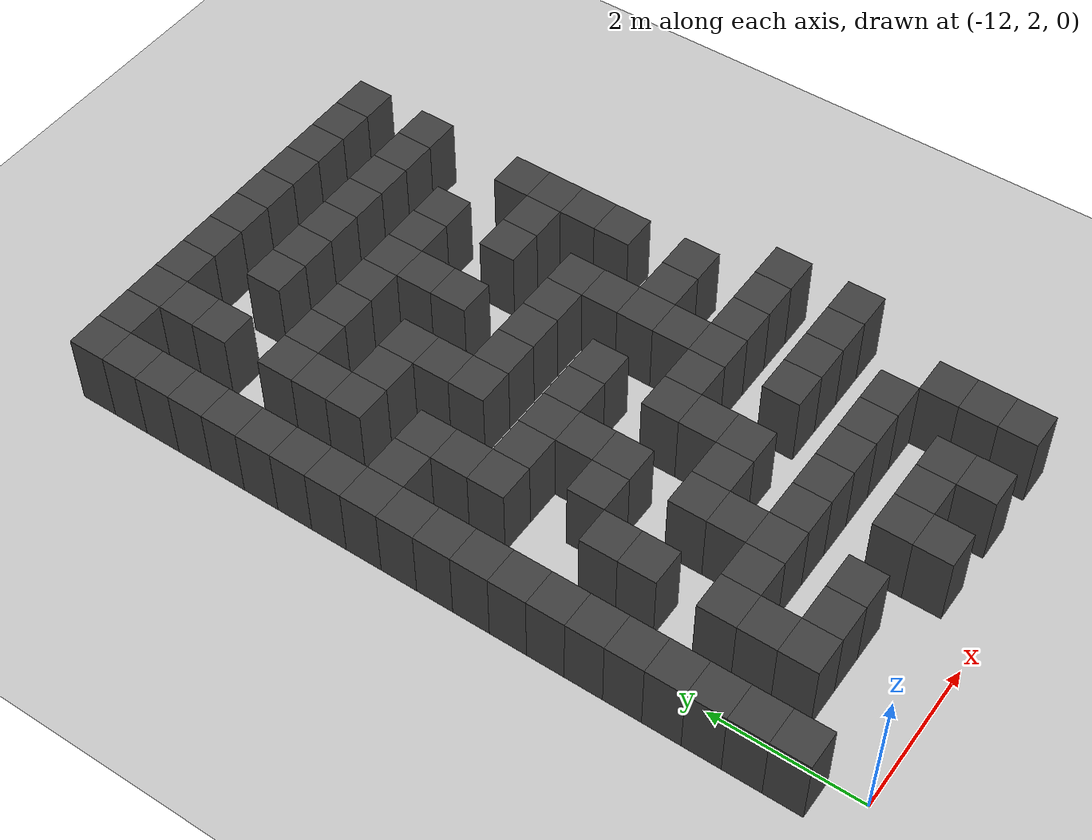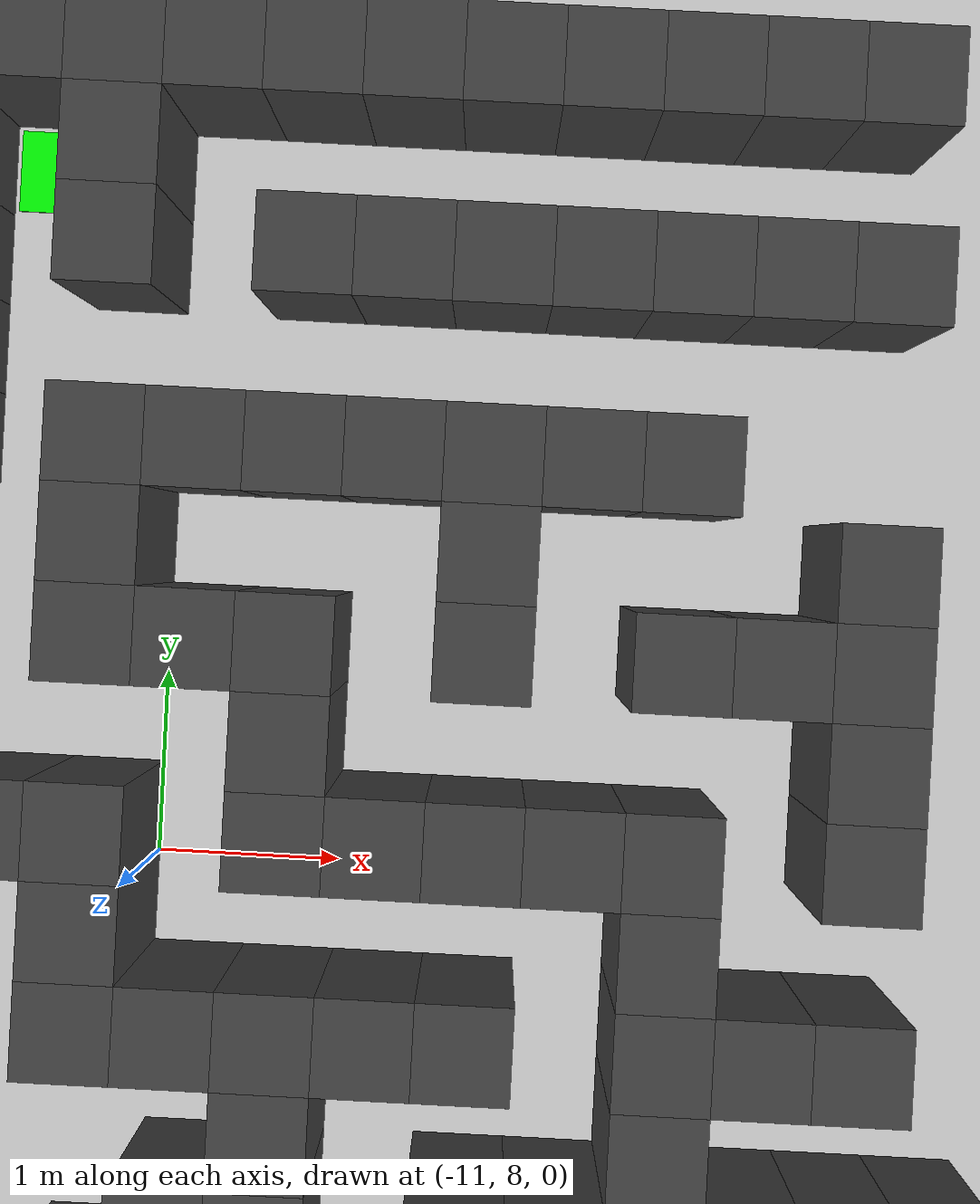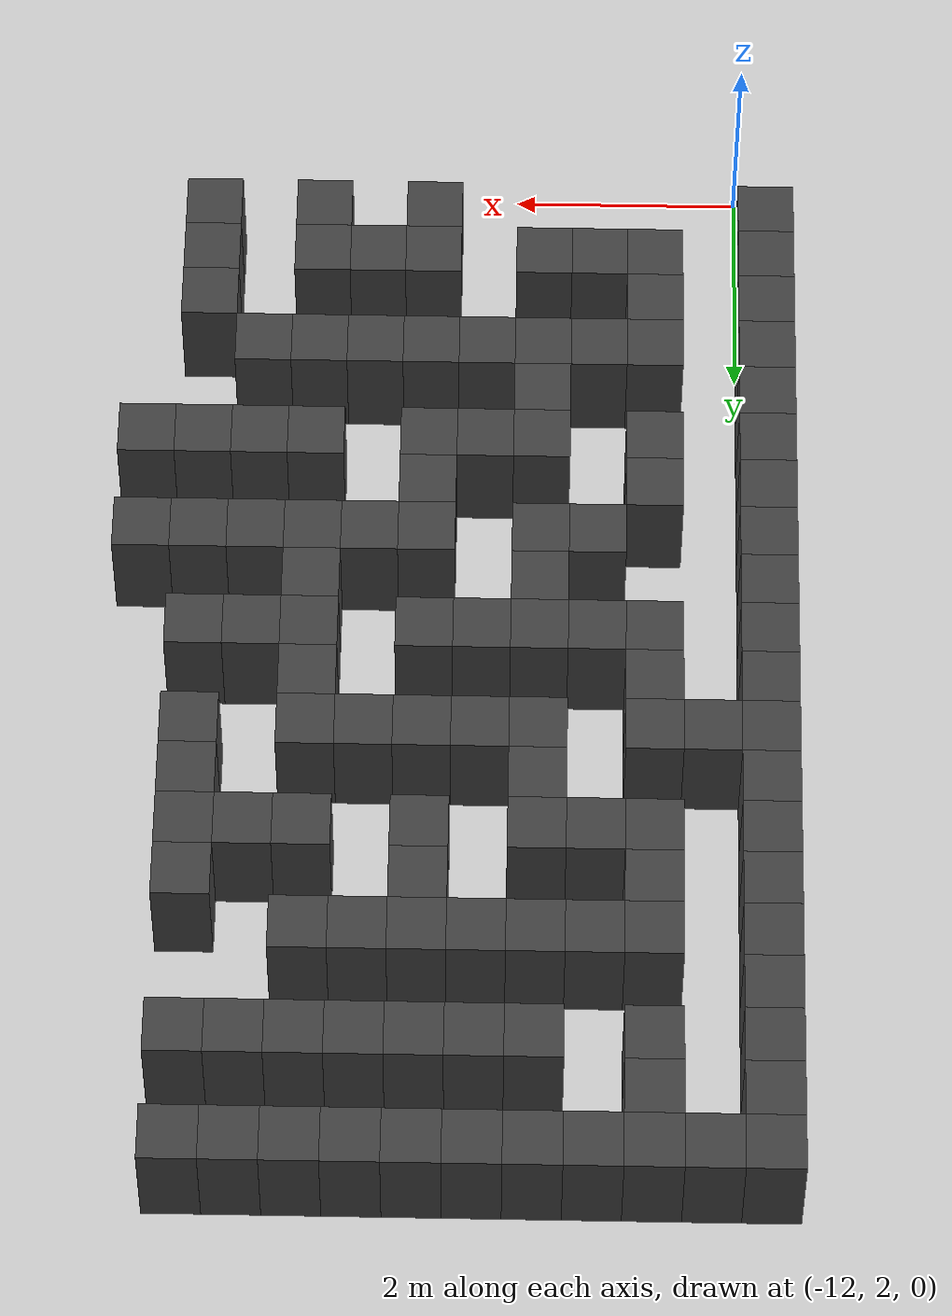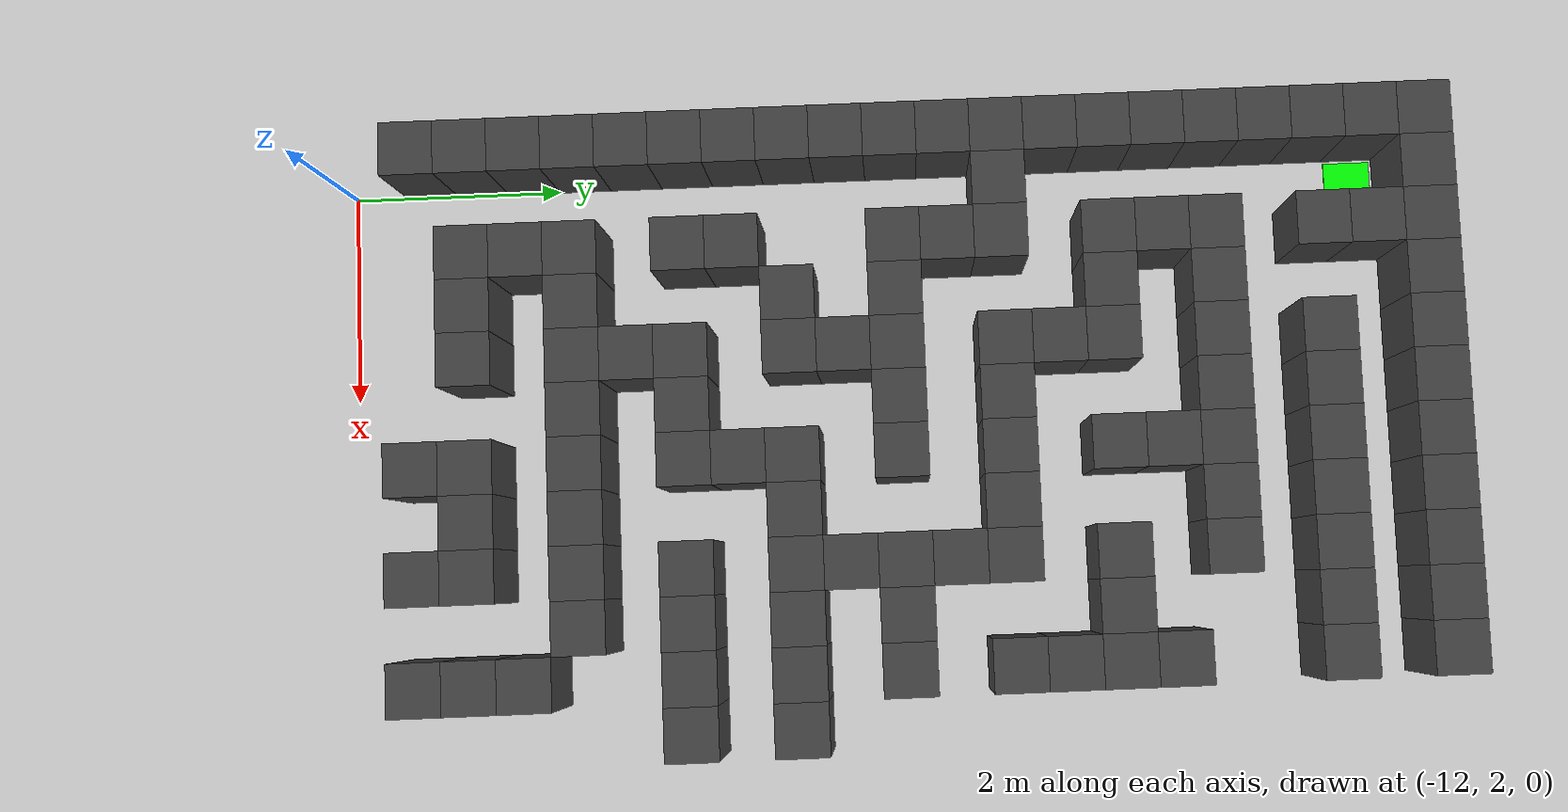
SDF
<sdf version="1.7">
 <world name="map_18228">
  <model name="ground_plane">
   <static>true</static>
   <link name="link">
    <collision name="collision">
     <geometry><plane><normal>0 0 1</normal><size>200 200</size></plane></geometry>
    </collision>
    <visual name="visual">
     <geometry><plane><normal>0 0 1</normal><size>200 200</size></plane></geometry>
     <material><ambient>0.8 0.8 0.8 1</ambient><diffuse>0.8 0.8 0.8 1</diffuse></material>
    </visual>
   </link>
  </model>
  <model name="maze_environment">
   <static>true</static>
   <link name="wall_0">
    <pose>-12.250 12.250 0.500 0 0 0</pose>
    <collision name="col"><geometry><box><size>0.5 0.5 1.0</size></box></geometry></collision>
    <visual name="vis">
     <geometry><box><size>0.5 0.5 1.0</size></box></geometry>
     <material><ambient>0.15 0.15 0.15 1</ambient><diffuse>0.25 0.25 0.25 1</diffuse></material>
    </visual>
   </link>
   <link name="wall_1">
    <pose>-11.750 12.250 0.500 0 0 0</pose>
    <collision name="col"><geometry><box><size>0.5 0.5 1.0</size></box></geometry></collision>
    <visual name="vis">
     <geometry><box><size>0.5 0.5 1.0</size></box></geometry>
     <material><ambient>0.15 0.15 0.15 1</ambient><diffuse>0.25 0.25 0.25 1</diffuse></material>
    </visual>
   </link>
   <link name="wall_2">
    <pose>-11.250 12.250 0.500 0 0 0</pose>
    <collision name="col"><geometry><box><size>0.5 0.5 1.0</size></box></geometry></collision>
    <visual name="vis">
     <geometry><box><size>0.5 0.5 1.0</size></box></geometry>
     <material><ambient>0.15 0.15 0.15 1</ambient><diffuse>0.25 0.25 0.25 1</diffuse></material>
    </visual>
   </link>
   <link name="wall_3">
    <pose>-10.750 12.250 0.500 0 0 0</pose>
    <collision name="col"><geometry><box><size>0.5 0.5 1.0</size></box></geometry></collision>
    <visual name="vis">
     <geometry><box><size>0.5 0.5 1.0</size></box></geometry>
     <material><ambient>0.15 0.15 0.15 1</ambient><diffuse>0.25 0.25 0.25 1</diffuse></material>
    </visual>
   </link>
   <link name="wall_4">
    <pose>-10.250 12.250 0.500 0 0 0</pose>
    <collision name="col"><geometry><box><size>0.5 0.5 1.0</size></box></geometry></collision>
    <visual name="vis">
     <geometry><box><size>0.5 0.5 1.0</size></box></geometry>
     <material><ambient>0.15 0.15 0.15 1</ambient><diffuse>0.25 0.25 0.25 1</diffuse></material>
    </visual>
   </link>
   <link name="wall_5">
    <pose>-9.750 12.250 0.500 0 0 0</pose>
    <collision name="col"><geometry><box><size>0.5 0.5 1.0</size></box></geometry></collision>
    <visual name="vis">
     <geometry><box><size>0.5 0.5 1.0</size></box></geometry>
     <material><ambient>0.15 0.15 0.15 1</ambient><diffuse>0.25 0.25 0.25 1</diffuse></material>
    </visual>
   </link>
   <link name="wall_6">
    <pose>-9.250 12.250 0.500 0 0 0</pose>
    <collision name="col"><geometry><box><size>0.5 0.5 1.0</size></box></geometry></collision>
    <visual name="vis">
     <geometry><box><size>0.5 0.5 1.0</size></box></geometry>
     <material><ambient>0.15 0.15 0.15 1</ambient><diffuse>0.25 0.25 0.25 1</diffuse></material>
    </visual>
   </link>
   <link name="wall_7">
    <pose>-8.750 12.250 0.500 0 0 0</pose>
    <collision name="col"><geometry><box><size>0.5 0.5 1.0</size></box></geometry></collision>
    <visual name="vis">
     <geometry><box><size>0.5 0.5 1.0</size></box></geometry>
     <material><ambient>0.15 0.15 0.15 1</ambient><diffuse>0.25 0.25 0.25 1</diffuse></material>
    </visual>
   </link>
   <link name="wall_8">
    <pose>-8.250 12.250 0.500 0 0 0</pose>
    <collision name="col"><geometry><box><size>0.5 0.5 1.0</size></box></geometry></collision>
    <visual name="vis">
     <geometry><box><size>0.5 0.5 1.0</size></box></geometry>
     <material><ambient>0.15 0.15 0.15 1</ambient><diffuse>0.25 0.25 0.25 1</diffuse></material>
    </visual>
   </link>
   <link name="wall_9">
    <pose>-7.750 12.250 0.500 0 0 0</pose>
    <collision name="col"><geometry><box><size>0.5 0.5 1.0</size></box></geometry></collision>
    <visual name="vis">
     <geometry><box><size>0.5 0.5 1.0</size></box></geometry>
     <material><ambient>0.15 0.15 0.15 1</ambient><diffuse>0.25 0.25 0.25 1</diffuse></material>
    </visual>
   </link>
   <link name="wall_10">
    <pose>-7.250 12.250 0.500 0 0 0</pose>
    <collision name="col"><geometry><box><size>0.5 0.5 1.0</size></box></geometry></collision>
    <visual name="vis">
     <geometry><box><size>0.5 0.5 1.0</size></box></geometry>
     <material><ambient>0.15 0.15 0.15 1</ambient><diffuse>0.25 0.25 0.25 1</diffuse></material>
    </visual>
   </link>
   <link name="wall_50">
    <pose>-12.250 11.750 0.500 0 0 0</pose>
    <collision name="col"><geometry><box><size>0.5 0.5 1.0</size></box></geometry></collision>
    <visual name="vis">
     <geometry><box><size>0.5 0.5 1.0</size></box></geometry>
     <material><ambient>0.15 0.15 0.15 1</ambient><diffuse>0.25 0.25 0.25 1</diffuse></material>
    </visual>
   </link>
   <link name="wall_51">
    <pose>-11.250 11.750 0.500 0 0 0</pose>
    <collision name="col"><geometry><box><size>0.5 0.5 1.0</size></box></geometry></collision>
    <visual name="vis">
     <geometry><box><size>0.5 0.5 1.0</size></box></geometry>
     <material><ambient>0.15 0.15 0.15 1</ambient><diffuse>0.25 0.25 0.25 1</diffuse></material>
    </visual>
   </link>
   <link name="wall_57">
    <pose>-12.250 11.250 0.500 0 0 0</pose>
    <collision name="col"><geometry><box><size>0.5 0.5 1.0</size></box></geometry></collision>
    <visual name="vis">
     <geometry><box><size>0.5 0.5 1.0</size></box></geometry>
     <material><ambient>0.15 0.15 0.15 1</ambient><diffuse>0.25 0.25 0.25 1</diffuse></material>
    </visual>
   </link>
   <link name="wall_58">
    <pose>-11.250 11.250 0.500 0 0 0</pose>
    <collision name="col"><geometry><box><size>0.5 0.5 1.0</size></box></geometry></collision>
    <visual name="vis">
     <geometry><box><size>0.5 0.5 1.0</size></box></geometry>
     <material><ambient>0.15 0.15 0.15 1</ambient><diffuse>0.25 0.25 0.25 1</diffuse></material>
    </visual>
   </link>
   <link name="wall_59">
    <pose>-10.250 11.250 0.500 0 0 0</pose>
    <collision name="col"><geometry><box><size>0.5 0.5 1.0</size></box></geometry></collision>
    <visual name="vis">
     <geometry><box><size>0.5 0.5 1.0</size></box></geometry>
     <material><ambient>0.15 0.15 0.15 1</ambient><diffuse>0.25 0.25 0.25 1</diffuse></material>
    </visual>
   </link>
   <link name="wall_60">
    <pose>-9.750 11.250 0.500 0 0 0</pose>
    <collision name="col"><geometry><box><size>0.5 0.5 1.0</size></box></geometry></collision>
    <visual name="vis">
     <geometry><box><size>0.5 0.5 1.0</size></box></geometry>
     <material><ambient>0.15 0.15 0.15 1</ambient><diffuse>0.25 0.25 0.25 1</diffuse></material>
    </visual>
   </link>
   <link name="wall_61">
    <pose>-9.250 11.250 0.500 0 0 0</pose>
    <collision name="col"><geometry><box><size>0.5 0.5 1.0</size></box></geometry></collision>
    <visual name="vis">
     <geometry><box><size>0.5 0.5 1.0</size></box></geometry>
     <material><ambient>0.15 0.15 0.15 1</ambient><diffuse>0.25 0.25 0.25 1</diffuse></material>
    </visual>
   </link>
   <link name="wall_62">
    <pose>-8.750 11.250 0.500 0 0 0</pose>
    <collision name="col"><geometry><box><size>0.5 0.5 1.0</size></box></geometry></collision>
    <visual name="vis">
     <geometry><box><size>0.5 0.5 1.0</size></box></geometry>
     <material><ambient>0.15 0.15 0.15 1</ambient><diffuse>0.25 0.25 0.25 1</diffuse></material>
    </visual>
   </link>
   <link name="wall_63">
    <pose>-8.250 11.250 0.500 0 0 0</pose>
    <collision name="col"><geometry><box><size>0.5 0.5 1.0</size></box></geometry></collision>
    <visual name="vis">
     <geometry><box><size>0.5 0.5 1.0</size></box></geometry>
     <material><ambient>0.15 0.15 0.15 1</ambient><diffuse>0.25 0.25 0.25 1</diffuse></material>
    </visual>
   </link>
   <link name="wall_64">
    <pose>-7.750 11.250 0.500 0 0 0</pose>
    <collision name="col"><geometry><box><size>0.5 0.5 1.0</size></box></geometry></collision>
    <visual name="vis">
     <geometry><box><size>0.5 0.5 1.0</size></box></geometry>
     <material><ambient>0.15 0.15 0.15 1</ambient><diffuse>0.25 0.25 0.25 1</diffuse></material>
    </visual>
   </link>
   <link name="wall_65">
    <pose>-7.250 11.250 0.500 0 0 0</pose>
    <collision name="col"><geometry><box><size>0.5 0.5 1.0</size></box></geometry></collision>
    <visual name="vis">
     <geometry><box><size>0.5 0.5 1.0</size></box></geometry>
     <material><ambient>0.15 0.15 0.15 1</ambient><diffuse>0.25 0.25 0.25 1</diffuse></material>
    </visual>
   </link>
   <link name="wall_95">
    <pose>-12.250 10.750 0.500 0 0 0</pose>
    <collision name="col"><geometry><box><size>0.5 0.5 1.0</size></box></geometry></collision>
    <visual name="vis">
     <geometry><box><size>0.5 0.5 1.0</size></box></geometry>
     <material><ambient>0.15 0.15 0.15 1</ambient><diffuse>0.25 0.25 0.25 1</diffuse></material>
    </visual>
   </link>
   <link name="wall_108">
    <pose>-12.250 10.250 0.500 0 0 0</pose>
    <collision name="col"><geometry><box><size>0.5 0.5 1.0</size></box></geometry></collision>
    <visual name="vis">
     <geometry><box><size>0.5 0.5 1.0</size></box></geometry>
     <material><ambient>0.15 0.15 0.15 1</ambient><diffuse>0.25 0.25 0.25 1</diffuse></material>
    </visual>
   </link>
   <link name="wall_109">
    <pose>-11.250 10.250 0.500 0 0 0</pose>
    <collision name="col"><geometry><box><size>0.5 0.5 1.0</size></box></geometry></collision>
    <visual name="vis">
     <geometry><box><size>0.5 0.5 1.0</size></box></geometry>
     <material><ambient>0.15 0.15 0.15 1</ambient><diffuse>0.25 0.25 0.25 1</diffuse></material>
    </visual>
   </link>
   <link name="wall_110">
    <pose>-10.750 10.250 0.500 0 0 0</pose>
    <collision name="col"><geometry><box><size>0.5 0.5 1.0</size></box></geometry></collision>
    <visual name="vis">
     <geometry><box><size>0.5 0.5 1.0</size></box></geometry>
     <material><ambient>0.15 0.15 0.15 1</ambient><diffuse>0.25 0.25 0.25 1</diffuse></material>
    </visual>
   </link>
   <link name="wall_111">
    <pose>-10.250 10.250 0.500 0 0 0</pose>
    <collision name="col"><geometry><box><size>0.5 0.5 1.0</size></box></geometry></collision>
    <visual name="vis">
     <geometry><box><size>0.5 0.5 1.0</size></box></geometry>
     <material><ambient>0.15 0.15 0.15 1</ambient><diffuse>0.25 0.25 0.25 1</diffuse></material>
    </visual>
   </link>
   <link name="wall_112">
    <pose>-9.750 10.250 0.500 0 0 0</pose>
    <collision name="col"><geometry><box><size>0.5 0.5 1.0</size></box></geometry></collision>
    <visual name="vis">
     <geometry><box><size>0.5 0.5 1.0</size></box></geometry>
     <material><ambient>0.15 0.15 0.15 1</ambient><diffuse>0.25 0.25 0.25 1</diffuse></material>
    </visual>
   </link>
   <link name="wall_113">
    <pose>-9.250 10.250 0.500 0 0 0</pose>
    <collision name="col"><geometry><box><size>0.5 0.5 1.0</size></box></geometry></collision>
    <visual name="vis">
     <geometry><box><size>0.5 0.5 1.0</size></box></geometry>
     <material><ambient>0.15 0.15 0.15 1</ambient><diffuse>0.25 0.25 0.25 1</diffuse></material>
    </visual>
   </link>
   <link name="wall_114">
    <pose>-8.750 10.250 0.500 0 0 0</pose>
    <collision name="col"><geometry><box><size>0.5 0.5 1.0</size></box></geometry></collision>
    <visual name="vis">
     <geometry><box><size>0.5 0.5 1.0</size></box></geometry>
     <material><ambient>0.15 0.15 0.15 1</ambient><diffuse>0.25 0.25 0.25 1</diffuse></material>
    </visual>
   </link>
   <link name="wall_115">
    <pose>-8.250 10.250 0.500 0 0 0</pose>
    <collision name="col"><geometry><box><size>0.5 0.5 1.0</size></box></geometry></collision>
    <visual name="vis">
     <geometry><box><size>0.5 0.5 1.0</size></box></geometry>
     <material><ambient>0.15 0.15 0.15 1</ambient><diffuse>0.25 0.25 0.25 1</diffuse></material>
    </visual>
   </link>
   <link name="wall_145">
    <pose>-12.250 9.750 0.500 0 0 0</pose>
    <collision name="col"><geometry><box><size>0.5 0.5 1.0</size></box></geometry></collision>
    <visual name="vis">
     <geometry><box><size>0.5 0.5 1.0</size></box></geometry>
     <material><ambient>0.15 0.15 0.15 1</ambient><diffuse>0.25 0.25 0.25 1</diffuse></material>
    </visual>
   </link>
   <link name="wall_146">
    <pose>-11.250 9.750 0.500 0 0 0</pose>
    <collision name="col"><geometry><box><size>0.5 0.5 1.0</size></box></geometry></collision>
    <visual name="vis">
     <geometry><box><size>0.5 0.5 1.0</size></box></geometry>
     <material><ambient>0.15 0.15 0.15 1</ambient><diffuse>0.25 0.25 0.25 1</diffuse></material>
    </visual>
   </link>
   <link name="wall_147">
    <pose>-9.250 9.750 0.500 0 0 0</pose>
    <collision name="col"><geometry><box><size>0.5 0.5 1.0</size></box></geometry></collision>
    <visual name="vis">
     <geometry><box><size>0.5 0.5 1.0</size></box></geometry>
     <material><ambient>0.15 0.15 0.15 1</ambient><diffuse>0.25 0.25 0.25 1</diffuse></material>
    </visual>
   </link>
   <link name="wall_148">
    <pose>-7.250 9.750 0.500 0 0 0</pose>
    <collision name="col"><geometry><box><size>0.5 0.5 1.0</size></box></geometry></collision>
    <visual name="vis">
     <geometry><box><size>0.5 0.5 1.0</size></box></geometry>
     <material><ambient>0.15 0.15 0.15 1</ambient><diffuse>0.25 0.25 0.25 1</diffuse></material>
    </visual>
   </link>
   <link name="wall_160">
    <pose>-12.250 9.250 0.500 0 0 0</pose>
    <collision name="col"><geometry><box><size>0.5 0.5 1.0</size></box></geometry></collision>
    <visual name="vis">
     <geometry><box><size>0.5 0.5 1.0</size></box></geometry>
     <material><ambient>0.15 0.15 0.15 1</ambient><diffuse>0.25 0.25 0.25 1</diffuse></material>
    </visual>
   </link>
   <link name="wall_161">
    <pose>-11.250 9.250 0.500 0 0 0</pose>
    <collision name="col"><geometry><box><size>0.5 0.5 1.0</size></box></geometry></collision>
    <visual name="vis">
     <geometry><box><size>0.5 0.5 1.0</size></box></geometry>
     <material><ambient>0.15 0.15 0.15 1</ambient><diffuse>0.25 0.25 0.25 1</diffuse></material>
    </visual>
   </link>
   <link name="wall_162">
    <pose>-10.750 9.250 0.500 0 0 0</pose>
    <collision name="col"><geometry><box><size>0.5 0.5 1.0</size></box></geometry></collision>
    <visual name="vis">
     <geometry><box><size>0.5 0.5 1.0</size></box></geometry>
     <material><ambient>0.15 0.15 0.15 1</ambient><diffuse>0.25 0.25 0.25 1</diffuse></material>
    </visual>
   </link>
   <link name="wall_163">
    <pose>-10.250 9.250 0.500 0 0 0</pose>
    <collision name="col"><geometry><box><size>0.5 0.5 1.0</size></box></geometry></collision>
    <visual name="vis">
     <geometry><box><size>0.5 0.5 1.0</size></box></geometry>
     <material><ambient>0.15 0.15 0.15 1</ambient><diffuse>0.25 0.25 0.25 1</diffuse></material>
    </visual>
   </link>
   <link name="wall_164">
    <pose>-9.250 9.250 0.500 0 0 0</pose>
    <collision name="col"><geometry><box><size>0.5 0.5 1.0</size></box></geometry></collision>
    <visual name="vis">
     <geometry><box><size>0.5 0.5 1.0</size></box></geometry>
     <material><ambient>0.15 0.15 0.15 1</ambient><diffuse>0.25 0.25 0.25 1</diffuse></material>
    </visual>
   </link>
   <link name="wall_165">
    <pose>-8.250 9.250 0.500 0 0 0</pose>
    <collision name="col"><geometry><box><size>0.5 0.5 1.0</size></box></geometry></collision>
    <visual name="vis">
     <geometry><box><size>0.5 0.5 1.0</size></box></geometry>
     <material><ambient>0.15 0.15 0.15 1</ambient><diffuse>0.25 0.25 0.25 1</diffuse></material>
    </visual>
   </link>
   <link name="wall_166">
    <pose>-7.750 9.250 0.500 0 0 0</pose>
    <collision name="col"><geometry><box><size>0.5 0.5 1.0</size></box></geometry></collision>
    <visual name="vis">
     <geometry><box><size>0.5 0.5 1.0</size></box></geometry>
     <material><ambient>0.15 0.15 0.15 1</ambient><diffuse>0.25 0.25 0.25 1</diffuse></material>
    </visual>
   </link>
   <link name="wall_167">
    <pose>-7.250 9.250 0.500 0 0 0</pose>
    <collision name="col"><geometry><box><size>0.5 0.5 1.0</size></box></geometry></collision>
    <visual name="vis">
     <geometry><box><size>0.5 0.5 1.0</size></box></geometry>
     <material><ambient>0.15 0.15 0.15 1</ambient><diffuse>0.25 0.25 0.25 1</diffuse></material>
    </visual>
   </link>
   <link name="wall_192">
    <pose>-12.250 8.750 0.500 0 0 0</pose>
    <collision name="col"><geometry><box><size>0.5 0.5 1.0</size></box></geometry></collision>
    <visual name="vis">
     <geometry><box><size>0.5 0.5 1.0</size></box></geometry>
     <material><ambient>0.15 0.15 0.15 1</ambient><diffuse>0.25 0.25 0.25 1</diffuse></material>
    </visual>
   </link>
   <link name="wall_193">
    <pose>-10.250 8.750 0.500 0 0 0</pose>
    <collision name="col"><geometry><box><size>0.5 0.5 1.0</size></box></geometry></collision>
    <visual name="vis">
     <geometry><box><size>0.5 0.5 1.0</size></box></geometry>
     <material><ambient>0.15 0.15 0.15 1</ambient><diffuse>0.25 0.25 0.25 1</diffuse></material>
    </visual>
   </link>
   <link name="wall_194">
    <pose>-7.250 8.750 0.500 0 0 0</pose>
    <collision name="col"><geometry><box><size>0.5 0.5 1.0</size></box></geometry></collision>
    <visual name="vis">
     <geometry><box><size>0.5 0.5 1.0</size></box></geometry>
     <material><ambient>0.15 0.15 0.15 1</ambient><diffuse>0.25 0.25 0.25 1</diffuse></material>
    </visual>
   </link>
   <link name="wall_207">
    <pose>-12.250 8.250 0.500 0 0 0</pose>
    <collision name="col"><geometry><box><size>0.5 0.5 1.0</size></box></geometry></collision>
    <visual name="vis">
     <geometry><box><size>0.5 0.5 1.0</size></box></geometry>
     <material><ambient>0.15 0.15 0.15 1</ambient><diffuse>0.25 0.25 0.25 1</diffuse></material>
    </visual>
   </link>
   <link name="wall_208">
    <pose>-11.750 8.250 0.500 0 0 0</pose>
    <collision name="col"><geometry><box><size>0.5 0.5 1.0</size></box></geometry></collision>
    <visual name="vis">
     <geometry><box><size>0.5 0.5 1.0</size></box></geometry>
     <material><ambient>0.15 0.15 0.15 1</ambient><diffuse>0.25 0.25 0.25 1</diffuse></material>
    </visual>
   </link>
   <link name="wall_209">
    <pose>-11.250 8.250 0.500 0 0 0</pose>
    <collision name="col"><geometry><box><size>0.5 0.5 1.0</size></box></geometry></collision>
    <visual name="vis">
     <geometry><box><size>0.5 0.5 1.0</size></box></geometry>
     <material><ambient>0.15 0.15 0.15 1</ambient><diffuse>0.25 0.25 0.25 1</diffuse></material>
    </visual>
   </link>
   <link name="wall_210">
    <pose>-10.250 8.250 0.500 0 0 0</pose>
    <collision name="col"><geometry><box><size>0.5 0.5 1.0</size></box></geometry></collision>
    <visual name="vis">
     <geometry><box><size>0.5 0.5 1.0</size></box></geometry>
     <material><ambient>0.15 0.15 0.15 1</ambient><diffuse>0.25 0.25 0.25 1</diffuse></material>
    </visual>
   </link>
   <link name="wall_211">
    <pose>-9.750 8.250 0.500 0 0 0</pose>
    <collision name="col"><geometry><box><size>0.5 0.5 1.0</size></box></geometry></collision>
    <visual name="vis">
     <geometry><box><size>0.5 0.5 1.0</size></box></geometry>
     <material><ambient>0.15 0.15 0.15 1</ambient><diffuse>0.25 0.25 0.25 1</diffuse></material>
    </visual>
   </link>
   <link name="wall_212">
    <pose>-9.250 8.250 0.500 0 0 0</pose>
    <collision name="col"><geometry><box><size>0.5 0.5 1.0</size></box></geometry></collision>
    <visual name="vis">
     <geometry><box><size>0.5 0.5 1.0</size></box></geometry>
     <material><ambient>0.15 0.15 0.15 1</ambient><diffuse>0.25 0.25 0.25 1</diffuse></material>
    </visual>
   </link>
   <link name="wall_213">
    <pose>-8.750 8.250 0.500 0 0 0</pose>
    <collision name="col"><geometry><box><size>0.5 0.5 1.0</size></box></geometry></collision>
    <visual name="vis">
     <geometry><box><size>0.5 0.5 1.0</size></box></geometry>
     <material><ambient>0.15 0.15 0.15 1</ambient><diffuse>0.25 0.25 0.25 1</diffuse></material>
    </visual>
   </link>
   <link name="wall_214">
    <pose>-8.250 8.250 0.500 0 0 0</pose>
    <collision name="col"><geometry><box><size>0.5 0.5 1.0</size></box></geometry></collision>
    <visual name="vis">
     <geometry><box><size>0.5 0.5 1.0</size></box></geometry>
     <material><ambient>0.15 0.15 0.15 1</ambient><diffuse>0.25 0.25 0.25 1</diffuse></material>
    </visual>
   </link>
   <link name="wall_215">
    <pose>-7.250 8.250 0.500 0 0 0</pose>
    <collision name="col"><geometry><box><size>0.5 0.5 1.0</size></box></geometry></collision>
    <visual name="vis">
     <geometry><box><size>0.5 0.5 1.0</size></box></geometry>
     <material><ambient>0.15 0.15 0.15 1</ambient><diffuse>0.25 0.25 0.25 1</diffuse></material>
    </visual>
   </link>
   <link name="wall_243">
    <pose>-12.250 7.750 0.500 0 0 0</pose>
    <collision name="col"><geometry><box><size>0.5 0.5 1.0</size></box></geometry></collision>
    <visual name="vis">
     <geometry><box><size>0.5 0.5 1.0</size></box></geometry>
     <material><ambient>0.15 0.15 0.15 1</ambient><diffuse>0.25 0.25 0.25 1</diffuse></material>
    </visual>
   </link>
   <link name="wall_244">
    <pose>-11.250 7.750 0.500 0 0 0</pose>
    <collision name="col"><geometry><box><size>0.5 0.5 1.0</size></box></geometry></collision>
    <visual name="vis">
     <geometry><box><size>0.5 0.5 1.0</size></box></geometry>
     <material><ambient>0.15 0.15 0.15 1</ambient><diffuse>0.25 0.25 0.25 1</diffuse></material>
    </visual>
   </link>
   <link name="wall_245">
    <pose>-8.250 7.750 0.500 0 0 0</pose>
    <collision name="col"><geometry><box><size>0.5 0.5 1.0</size></box></geometry></collision>
    <visual name="vis">
     <geometry><box><size>0.5 0.5 1.0</size></box></geometry>
     <material><ambient>0.15 0.15 0.15 1</ambient><diffuse>0.25 0.25 0.25 1</diffuse></material>
    </visual>
   </link>
   <link name="wall_257">
    <pose>-12.250 7.250 0.500 0 0 0</pose>
    <collision name="col"><geometry><box><size>0.5 0.5 1.0</size></box></geometry></collision>
    <visual name="vis">
     <geometry><box><size>0.5 0.5 1.0</size></box></geometry>
     <material><ambient>0.15 0.15 0.15 1</ambient><diffuse>0.25 0.25 0.25 1</diffuse></material>
    </visual>
   </link>
   <link name="wall_258">
    <pose>-11.250 7.250 0.500 0 0 0</pose>
    <collision name="col"><geometry><box><size>0.5 0.5 1.0</size></box></geometry></collision>
    <visual name="vis">
     <geometry><box><size>0.5 0.5 1.0</size></box></geometry>
     <material><ambient>0.15 0.15 0.15 1</ambient><diffuse>0.25 0.25 0.25 1</diffuse></material>
    </visual>
   </link>
   <link name="wall_259">
    <pose>-10.750 7.250 0.500 0 0 0</pose>
    <collision name="col"><geometry><box><size>0.5 0.5 1.0</size></box></geometry></collision>
    <visual name="vis">
     <geometry><box><size>0.5 0.5 1.0</size></box></geometry>
     <material><ambient>0.15 0.15 0.15 1</ambient><diffuse>0.25 0.25 0.25 1</diffuse></material>
    </visual>
   </link>
   <link name="wall_260">
    <pose>-10.250 7.250 0.500 0 0 0</pose>
    <collision name="col"><geometry><box><size>0.5 0.5 1.0</size></box></geometry></collision>
    <visual name="vis">
     <geometry><box><size>0.5 0.5 1.0</size></box></geometry>
     <material><ambient>0.15 0.15 0.15 1</ambient><diffuse>0.25 0.25 0.25 1</diffuse></material>
    </visual>
   </link>
   <link name="wall_261">
    <pose>-9.750 7.250 0.500 0 0 0</pose>
    <collision name="col"><geometry><box><size>0.5 0.5 1.0</size></box></geometry></collision>
    <visual name="vis">
     <geometry><box><size>0.5 0.5 1.0</size></box></geometry>
     <material><ambient>0.15 0.15 0.15 1</ambient><diffuse>0.25 0.25 0.25 1</diffuse></material>
    </visual>
   </link>
   <link name="wall_262">
    <pose>-9.250 7.250 0.500 0 0 0</pose>
    <collision name="col"><geometry><box><size>0.5 0.5 1.0</size></box></geometry></collision>
    <visual name="vis">
     <geometry><box><size>0.5 0.5 1.0</size></box></geometry>
     <material><ambient>0.15 0.15 0.15 1</ambient><diffuse>0.25 0.25 0.25 1</diffuse></material>
    </visual>
   </link>
   <link name="wall_263">
    <pose>-8.250 7.250 0.500 0 0 0</pose>
    <collision name="col"><geometry><box><size>0.5 0.5 1.0</size></box></geometry></collision>
    <visual name="vis">
     <geometry><box><size>0.5 0.5 1.0</size></box></geometry>
     <material><ambient>0.15 0.15 0.15 1</ambient><diffuse>0.25 0.25 0.25 1</diffuse></material>
    </visual>
   </link>
   <link name="wall_264">
    <pose>-7.750 7.250 0.500 0 0 0</pose>
    <collision name="col"><geometry><box><size>0.5 0.5 1.0</size></box></geometry></collision>
    <visual name="vis">
     <geometry><box><size>0.5 0.5 1.0</size></box></geometry>
     <material><ambient>0.15 0.15 0.15 1</ambient><diffuse>0.25 0.25 0.25 1</diffuse></material>
    </visual>
   </link>
   <link name="wall_265">
    <pose>-7.250 7.250 0.500 0 0 0</pose>
    <collision name="col"><geometry><box><size>0.5 0.5 1.0</size></box></geometry></collision>
    <visual name="vis">
     <geometry><box><size>0.5 0.5 1.0</size></box></geometry>
     <material><ambient>0.15 0.15 0.15 1</ambient><diffuse>0.25 0.25 0.25 1</diffuse></material>
    </visual>
   </link>
   <link name="wall_290">
    <pose>-12.250 6.750 0.500 0 0 0</pose>
    <collision name="col"><geometry><box><size>0.5 0.5 1.0</size></box></geometry></collision>
    <visual name="vis">
     <geometry><box><size>0.5 0.5 1.0</size></box></geometry>
     <material><ambient>0.15 0.15 0.15 1</ambient><diffuse>0.25 0.25 0.25 1</diffuse></material>
    </visual>
   </link>
   <link name="wall_291">
    <pose>-10.250 6.750 0.500 0 0 0</pose>
    <collision name="col"><geometry><box><size>0.5 0.5 1.0</size></box></geometry></collision>
    <visual name="vis">
     <geometry><box><size>0.5 0.5 1.0</size></box></geometry>
     <material><ambient>0.15 0.15 0.15 1</ambient><diffuse>0.25 0.25 0.25 1</diffuse></material>
    </visual>
   </link>
   <link name="wall_292">
    <pose>-8.250 6.750 0.500 0 0 0</pose>
    <collision name="col"><geometry><box><size>0.5 0.5 1.0</size></box></geometry></collision>
    <visual name="vis">
     <geometry><box><size>0.5 0.5 1.0</size></box></geometry>
     <material><ambient>0.15 0.15 0.15 1</ambient><diffuse>0.25 0.25 0.25 1</diffuse></material>
    </visual>
   </link>
   <link name="wall_301">
    <pose>-12.250 6.250 0.500 0 0 0</pose>
    <collision name="col"><geometry><box><size>0.5 0.5 1.0</size></box></geometry></collision>
    <visual name="vis">
     <geometry><box><size>0.5 0.5 1.0</size></box></geometry>
     <material><ambient>0.15 0.15 0.15 1</ambient><diffuse>0.25 0.25 0.25 1</diffuse></material>
    </visual>
   </link>
   <link name="wall_302">
    <pose>-10.750 6.250 0.500 0 0 0</pose>
    <collision name="col"><geometry><box><size>0.5 0.5 1.0</size></box></geometry></collision>
    <visual name="vis">
     <geometry><box><size>0.5 0.5 1.0</size></box></geometry>
     <material><ambient>0.15 0.15 0.15 1</ambient><diffuse>0.25 0.25 0.25 1</diffuse></material>
    </visual>
   </link>
   <link name="wall_303">
    <pose>-10.250 6.250 0.500 0 0 0</pose>
    <collision name="col"><geometry><box><size>0.5 0.5 1.0</size></box></geometry></collision>
    <visual name="vis">
     <geometry><box><size>0.5 0.5 1.0</size></box></geometry>
     <material><ambient>0.15 0.15 0.15 1</ambient><diffuse>0.25 0.25 0.25 1</diffuse></material>
    </visual>
   </link>
   <link name="wall_304">
    <pose>-9.250 6.250 0.500 0 0 0</pose>
    <collision name="col"><geometry><box><size>0.5 0.5 1.0</size></box></geometry></collision>
    <visual name="vis">
     <geometry><box><size>0.5 0.5 1.0</size></box></geometry>
     <material><ambient>0.15 0.15 0.15 1</ambient><diffuse>0.25 0.25 0.25 1</diffuse></material>
    </visual>
   </link>
   <link name="wall_305">
    <pose>-8.750 6.250 0.500 0 0 0</pose>
    <collision name="col"><geometry><box><size>0.5 0.5 1.0</size></box></geometry></collision>
    <visual name="vis">
     <geometry><box><size>0.5 0.5 1.0</size></box></geometry>
     <material><ambient>0.15 0.15 0.15 1</ambient><diffuse>0.25 0.25 0.25 1</diffuse></material>
    </visual>
   </link>
   <link name="wall_306">
    <pose>-8.250 6.250 0.500 0 0 0</pose>
    <collision name="col"><geometry><box><size>0.5 0.5 1.0</size></box></geometry></collision>
    <visual name="vis">
     <geometry><box><size>0.5 0.5 1.0</size></box></geometry>
     <material><ambient>0.15 0.15 0.15 1</ambient><diffuse>0.25 0.25 0.25 1</diffuse></material>
    </visual>
   </link>
   <link name="wall_307">
    <pose>-7.750 6.250 0.500 0 0 0</pose>
    <collision name="col"><geometry><box><size>0.5 0.5 1.0</size></box></geometry></collision>
    <visual name="vis">
     <geometry><box><size>0.5 0.5 1.0</size></box></geometry>
     <material><ambient>0.15 0.15 0.15 1</ambient><diffuse>0.25 0.25 0.25 1</diffuse></material>
    </visual>
   </link>
   <link name="wall_308">
    <pose>-7.250 6.250 0.500 0 0 0</pose>
    <collision name="col"><geometry><box><size>0.5 0.5 1.0</size></box></geometry></collision>
    <visual name="vis">
     <geometry><box><size>0.5 0.5 1.0</size></box></geometry>
     <material><ambient>0.15 0.15 0.15 1</ambient><diffuse>0.25 0.25 0.25 1</diffuse></material>
    </visual>
   </link>
   <link name="wall_309">
    <pose>-6.750 6.250 0.500 0 0 0</pose>
    <collision name="col"><geometry><box><size>0.5 0.5 1.0</size></box></geometry></collision>
    <visual name="vis">
     <geometry><box><size>0.5 0.5 1.0</size></box></geometry>
     <material><ambient>0.15 0.15 0.15 1</ambient><diffuse>0.25 0.25 0.25 1</diffuse></material>
    </visual>
   </link>
   <link name="wall_340">
    <pose>-12.250 5.750 0.500 0 0 0</pose>
    <collision name="col"><geometry><box><size>0.5 0.5 1.0</size></box></geometry></collision>
    <visual name="vis">
     <geometry><box><size>0.5 0.5 1.0</size></box></geometry>
     <material><ambient>0.15 0.15 0.15 1</ambient><diffuse>0.25 0.25 0.25 1</diffuse></material>
    </visual>
   </link>
   <link name="wall_341">
    <pose>-11.250 5.750 0.500 0 0 0</pose>
    <collision name="col"><geometry><box><size>0.5 0.5 1.0</size></box></geometry></collision>
    <visual name="vis">
     <geometry><box><size>0.5 0.5 1.0</size></box></geometry>
     <material><ambient>0.15 0.15 0.15 1</ambient><diffuse>0.25 0.25 0.25 1</diffuse></material>
    </visual>
   </link>
   <link name="wall_342">
    <pose>-9.250 5.750 0.500 0 0 0</pose>
    <collision name="col"><geometry><box><size>0.5 0.5 1.0</size></box></geometry></collision>
    <visual name="vis">
     <geometry><box><size>0.5 0.5 1.0</size></box></geometry>
     <material><ambient>0.15 0.15 0.15 1</ambient><diffuse>0.25 0.25 0.25 1</diffuse></material>
    </visual>
   </link>
   <link name="wall_351">
    <pose>-12.250 5.250 0.500 0 0 0</pose>
    <collision name="col"><geometry><box><size>0.5 0.5 1.0</size></box></geometry></collision>
    <visual name="vis">
     <geometry><box><size>0.5 0.5 1.0</size></box></geometry>
     <material><ambient>0.15 0.15 0.15 1</ambient><diffuse>0.25 0.25 0.25 1</diffuse></material>
    </visual>
   </link>
   <link name="wall_352">
    <pose>-11.250 5.250 0.500 0 0 0</pose>
    <collision name="col"><geometry><box><size>0.5 0.5 1.0</size></box></geometry></collision>
    <visual name="vis">
     <geometry><box><size>0.5 0.5 1.0</size></box></geometry>
     <material><ambient>0.15 0.15 0.15 1</ambient><diffuse>0.25 0.25 0.25 1</diffuse></material>
    </visual>
   </link>
   <link name="wall_353">
    <pose>-10.250 5.250 0.500 0 0 0</pose>
    <collision name="col"><geometry><box><size>0.5 0.5 1.0</size></box></geometry></collision>
    <visual name="vis">
     <geometry><box><size>0.5 0.5 1.0</size></box></geometry>
     <material><ambient>0.15 0.15 0.15 1</ambient><diffuse>0.25 0.25 0.25 1</diffuse></material>
    </visual>
   </link>
   <link name="wall_354">
    <pose>-9.750 5.250 0.500 0 0 0</pose>
    <collision name="col"><geometry><box><size>0.5 0.5 1.0</size></box></geometry></collision>
    <visual name="vis">
     <geometry><box><size>0.5 0.5 1.0</size></box></geometry>
     <material><ambient>0.15 0.15 0.15 1</ambient><diffuse>0.25 0.25 0.25 1</diffuse></material>
    </visual>
   </link>
   <link name="wall_355">
    <pose>-9.250 5.250 0.500 0 0 0</pose>
    <collision name="col"><geometry><box><size>0.5 0.5 1.0</size></box></geometry></collision>
    <visual name="vis">
     <geometry><box><size>0.5 0.5 1.0</size></box></geometry>
     <material><ambient>0.15 0.15 0.15 1</ambient><diffuse>0.25 0.25 0.25 1</diffuse></material>
    </visual>
   </link>
   <link name="wall_356">
    <pose>-8.250 5.250 0.500 0 0 0</pose>
    <collision name="col"><geometry><box><size>0.5 0.5 1.0</size></box></geometry></collision>
    <visual name="vis">
     <geometry><box><size>0.5 0.5 1.0</size></box></geometry>
     <material><ambient>0.15 0.15 0.15 1</ambient><diffuse>0.25 0.25 0.25 1</diffuse></material>
    </visual>
   </link>
   <link name="wall_357">
    <pose>-7.750 5.250 0.500 0 0 0</pose>
    <collision name="col"><geometry><box><size>0.5 0.5 1.0</size></box></geometry></collision>
    <visual name="vis">
     <geometry><box><size>0.5 0.5 1.0</size></box></geometry>
     <material><ambient>0.15 0.15 0.15 1</ambient><diffuse>0.25 0.25 0.25 1</diffuse></material>
    </visual>
   </link>
   <link name="wall_358">
    <pose>-7.250 5.250 0.500 0 0 0</pose>
    <collision name="col"><geometry><box><size>0.5 0.5 1.0</size></box></geometry></collision>
    <visual name="vis">
     <geometry><box><size>0.5 0.5 1.0</size></box></geometry>
     <material><ambient>0.15 0.15 0.15 1</ambient><diffuse>0.25 0.25 0.25 1</diffuse></material>
    </visual>
   </link>
   <link name="wall_359">
    <pose>-6.750 5.250 0.500 0 0 0</pose>
    <collision name="col"><geometry><box><size>0.5 0.5 1.0</size></box></geometry></collision>
    <visual name="vis">
     <geometry><box><size>0.5 0.5 1.0</size></box></geometry>
     <material><ambient>0.15 0.15 0.15 1</ambient><diffuse>0.25 0.25 0.25 1</diffuse></material>
    </visual>
   </link>
   <link name="wall_391">
    <pose>-12.250 4.750 0.500 0 0 0</pose>
    <collision name="col"><geometry><box><size>0.5 0.5 1.0</size></box></geometry></collision>
    <visual name="vis">
     <geometry><box><size>0.5 0.5 1.0</size></box></geometry>
     <material><ambient>0.15 0.15 0.15 1</ambient><diffuse>0.25 0.25 0.25 1</diffuse></material>
    </visual>
   </link>
   <link name="wall_392">
    <pose>-10.250 4.750 0.500 0 0 0</pose>
    <collision name="col"><geometry><box><size>0.5 0.5 1.0</size></box></geometry></collision>
    <visual name="vis">
     <geometry><box><size>0.5 0.5 1.0</size></box></geometry>
     <material><ambient>0.15 0.15 0.15 1</ambient><diffuse>0.25 0.25 0.25 1</diffuse></material>
    </visual>
   </link>
   <link name="wall_401">
    <pose>-12.250 4.250 0.500 0 0 0</pose>
    <collision name="col"><geometry><box><size>0.5 0.5 1.0</size></box></geometry></collision>
    <visual name="vis">
     <geometry><box><size>0.5 0.5 1.0</size></box></geometry>
     <material><ambient>0.15 0.15 0.15 1</ambient><diffuse>0.25 0.25 0.25 1</diffuse></material>
    </visual>
   </link>
   <link name="wall_402">
    <pose>-11.250 4.250 0.500 0 0 0</pose>
    <collision name="col"><geometry><box><size>0.5 0.5 1.0</size></box></geometry></collision>
    <visual name="vis">
     <geometry><box><size>0.5 0.5 1.0</size></box></geometry>
     <material><ambient>0.15 0.15 0.15 1</ambient><diffuse>0.25 0.25 0.25 1</diffuse></material>
    </visual>
   </link>
   <link name="wall_403">
    <pose>-10.750 4.250 0.500 0 0 0</pose>
    <collision name="col"><geometry><box><size>0.5 0.5 1.0</size></box></geometry></collision>
    <visual name="vis">
     <geometry><box><size>0.5 0.5 1.0</size></box></geometry>
     <material><ambient>0.15 0.15 0.15 1</ambient><diffuse>0.25 0.25 0.25 1</diffuse></material>
    </visual>
   </link>
   <link name="wall_404">
    <pose>-10.250 4.250 0.500 0 0 0</pose>
    <collision name="col"><geometry><box><size>0.5 0.5 1.0</size></box></geometry></collision>
    <visual name="vis">
     <geometry><box><size>0.5 0.5 1.0</size></box></geometry>
     <material><ambient>0.15 0.15 0.15 1</ambient><diffuse>0.25 0.25 0.25 1</diffuse></material>
    </visual>
   </link>
   <link name="wall_405">
    <pose>-9.750 4.250 0.500 0 0 0</pose>
    <collision name="col"><geometry><box><size>0.5 0.5 1.0</size></box></geometry></collision>
    <visual name="vis">
     <geometry><box><size>0.5 0.5 1.0</size></box></geometry>
     <material><ambient>0.15 0.15 0.15 1</ambient><diffuse>0.25 0.25 0.25 1</diffuse></material>
    </visual>
   </link>
   <link name="wall_406">
    <pose>-9.250 4.250 0.500 0 0 0</pose>
    <collision name="col"><geometry><box><size>0.5 0.5 1.0</size></box></geometry></collision>
    <visual name="vis">
     <geometry><box><size>0.5 0.5 1.0</size></box></geometry>
     <material><ambient>0.15 0.15 0.15 1</ambient><diffuse>0.25 0.25 0.25 1</diffuse></material>
    </visual>
   </link>
   <link name="wall_407">
    <pose>-8.750 4.250 0.500 0 0 0</pose>
    <collision name="col"><geometry><box><size>0.5 0.5 1.0</size></box></geometry></collision>
    <visual name="vis">
     <geometry><box><size>0.5 0.5 1.0</size></box></geometry>
     <material><ambient>0.15 0.15 0.15 1</ambient><diffuse>0.25 0.25 0.25 1</diffuse></material>
    </visual>
   </link>
   <link name="wall_408">
    <pose>-8.250 4.250 0.500 0 0 0</pose>
    <collision name="col"><geometry><box><size>0.5 0.5 1.0</size></box></geometry></collision>
    <visual name="vis">
     <geometry><box><size>0.5 0.5 1.0</size></box></geometry>
     <material><ambient>0.15 0.15 0.15 1</ambient><diffuse>0.25 0.25 0.25 1</diffuse></material>
    </visual>
   </link>
   <link name="wall_409">
    <pose>-7.750 4.250 0.500 0 0 0</pose>
    <collision name="col"><geometry><box><size>0.5 0.5 1.0</size></box></geometry></collision>
    <visual name="vis">
     <geometry><box><size>0.5 0.5 1.0</size></box></geometry>
     <material><ambient>0.15 0.15 0.15 1</ambient><diffuse>0.25 0.25 0.25 1</diffuse></material>
    </visual>
   </link>
   <link name="wall_436">
    <pose>-12.250 3.750 0.500 0 0 0</pose>
    <collision name="col"><geometry><box><size>0.5 0.5 1.0</size></box></geometry></collision>
    <visual name="vis">
     <geometry><box><size>0.5 0.5 1.0</size></box></geometry>
     <material><ambient>0.15 0.15 0.15 1</ambient><diffuse>0.25 0.25 0.25 1</diffuse></material>
    </visual>
   </link>
   <link name="wall_437">
    <pose>-11.250 3.750 0.500 0 0 0</pose>
    <collision name="col"><geometry><box><size>0.5 0.5 1.0</size></box></geometry></collision>
    <visual name="vis">
     <geometry><box><size>0.5 0.5 1.0</size></box></geometry>
     <material><ambient>0.15 0.15 0.15 1</ambient><diffuse>0.25 0.25 0.25 1</diffuse></material>
    </visual>
   </link>
   <link name="wall_438">
    <pose>-7.250 3.750 0.500 0 0 0</pose>
    <collision name="col"><geometry><box><size>0.5 0.5 1.0</size></box></geometry></collision>
    <visual name="vis">
     <geometry><box><size>0.5 0.5 1.0</size></box></geometry>
     <material><ambient>0.15 0.15 0.15 1</ambient><diffuse>0.25 0.25 0.25 1</diffuse></material>
    </visual>
   </link>
   <link name="wall_449">
    <pose>-12.250 3.250 0.500 0 0 0</pose>
    <collision name="col"><geometry><box><size>0.5 0.5 1.0</size></box></geometry></collision>
    <visual name="vis">
     <geometry><box><size>0.5 0.5 1.0</size></box></geometry>
     <material><ambient>0.15 0.15 0.15 1</ambient><diffuse>0.25 0.25 0.25 1</diffuse></material>
    </visual>
   </link>
   <link name="wall_450">
    <pose>-11.250 3.250 0.500 0 0 0</pose>
    <collision name="col"><geometry><box><size>0.5 0.5 1.0</size></box></geometry></collision>
    <visual name="vis">
     <geometry><box><size>0.5 0.5 1.0</size></box></geometry>
     <material><ambient>0.15 0.15 0.15 1</ambient><diffuse>0.25 0.25 0.25 1</diffuse></material>
    </visual>
   </link>
   <link name="wall_451">
    <pose>-10.750 3.250 0.500 0 0 0</pose>
    <collision name="col"><geometry><box><size>0.5 0.5 1.0</size></box></geometry></collision>
    <visual name="vis">
     <geometry><box><size>0.5 0.5 1.0</size></box></geometry>
     <material><ambient>0.15 0.15 0.15 1</ambient><diffuse>0.25 0.25 0.25 1</diffuse></material>
    </visual>
   </link>
   <link name="wall_452">
    <pose>-10.250 3.250 0.500 0 0 0</pose>
    <collision name="col"><geometry><box><size>0.5 0.5 1.0</size></box></geometry></collision>
    <visual name="vis">
     <geometry><box><size>0.5 0.5 1.0</size></box></geometry>
     <material><ambient>0.15 0.15 0.15 1</ambient><diffuse>0.25 0.25 0.25 1</diffuse></material>
    </visual>
   </link>
   <link name="wall_453">
    <pose>-9.250 3.250 0.500 0 0 0</pose>
    <collision name="col"><geometry><box><size>0.5 0.5 1.0</size></box></geometry></collision>
    <visual name="vis">
     <geometry><box><size>0.5 0.5 1.0</size></box></geometry>
     <material><ambient>0.15 0.15 0.15 1</ambient><diffuse>0.25 0.25 0.25 1</diffuse></material>
    </visual>
   </link>
   <link name="wall_454">
    <pose>-8.750 3.250 0.500 0 0 0</pose>
    <collision name="col"><geometry><box><size>0.5 0.5 1.0</size></box></geometry></collision>
    <visual name="vis">
     <geometry><box><size>0.5 0.5 1.0</size></box></geometry>
     <material><ambient>0.15 0.15 0.15 1</ambient><diffuse>0.25 0.25 0.25 1</diffuse></material>
    </visual>
   </link>
   <link name="wall_455">
    <pose>-8.250 3.250 0.500 0 0 0</pose>
    <collision name="col"><geometry><box><size>0.5 0.5 1.0</size></box></geometry></collision>
    <visual name="vis">
     <geometry><box><size>0.5 0.5 1.0</size></box></geometry>
     <material><ambient>0.15 0.15 0.15 1</ambient><diffuse>0.25 0.25 0.25 1</diffuse></material>
    </visual>
   </link>
   <link name="wall_456">
    <pose>-7.250 3.250 0.500 0 0 0</pose>
    <collision name="col"><geometry><box><size>0.5 0.5 1.0</size></box></geometry></collision>
    <visual name="vis">
     <geometry><box><size>0.5 0.5 1.0</size></box></geometry>
     <material><ambient>0.15 0.15 0.15 1</ambient><diffuse>0.25 0.25 0.25 1</diffuse></material>
    </visual>
   </link>
   <link name="wall_489">
    <pose>-12.250 2.750 0.500 0 0 0</pose>
    <collision name="col"><geometry><box><size>0.5 0.5 1.0</size></box></geometry></collision>
    <visual name="vis">
     <geometry><box><size>0.5 0.5 1.0</size></box></geometry>
     <material><ambient>0.15 0.15 0.15 1</ambient><diffuse>0.25 0.25 0.25 1</diffuse></material>
    </visual>
   </link>
   <link name="wall_490">
    <pose>-9.250 2.750 0.500 0 0 0</pose>
    <collision name="col"><geometry><box><size>0.5 0.5 1.0</size></box></geometry></collision>
    <visual name="vis">
     <geometry><box><size>0.5 0.5 1.0</size></box></geometry>
     <material><ambient>0.15 0.15 0.15 1</ambient><diffuse>0.25 0.25 0.25 1</diffuse></material>
    </visual>
   </link>
   <link name="wall_491">
    <pose>-8.250 2.750 0.500 0 0 0</pose>
    <collision name="col"><geometry><box><size>0.5 0.5 1.0</size></box></geometry></collision>
    <visual name="vis">
     <geometry><box><size>0.5 0.5 1.0</size></box></geometry>
     <material><ambient>0.15 0.15 0.15 1</ambient><diffuse>0.25 0.25 0.25 1</diffuse></material>
    </visual>
   </link>
   <link name="wall_492">
    <pose>-7.250 2.750 0.500 0 0 0</pose>
    <collision name="col"><geometry><box><size>0.5 0.5 1.0</size></box></geometry></collision>
    <visual name="vis">
     <geometry><box><size>0.5 0.5 1.0</size></box></geometry>
     <material><ambient>0.15 0.15 0.15 1</ambient><diffuse>0.25 0.25 0.25 1</diffuse></material>
    </visual>
   </link>
   <link name="start_zone">
    <pose>-11.750 11.750 0.005 0 0 0</pose>
    <visual name="vis">
     <geometry><box><size>0.45 0.45 0.01</size></box></geometry>
     <material>
      <ambient>0.0 1.0 0.0 1</ambient>
      <diffuse>0.0 1.0 0.0 1</diffuse>
      <emissive>0.00 0.60 0.00 1</emissive>
     </material>
    </visual>
   </link>
  </model>
 </world>
</sdf>
